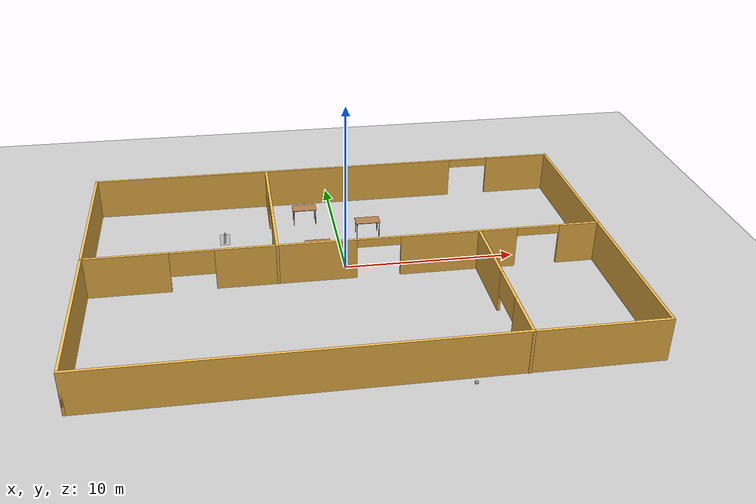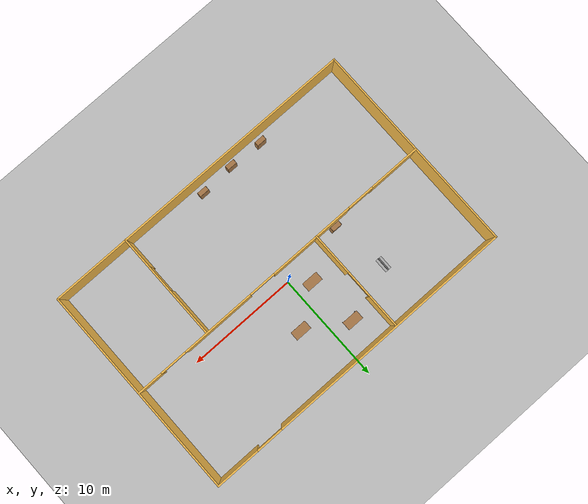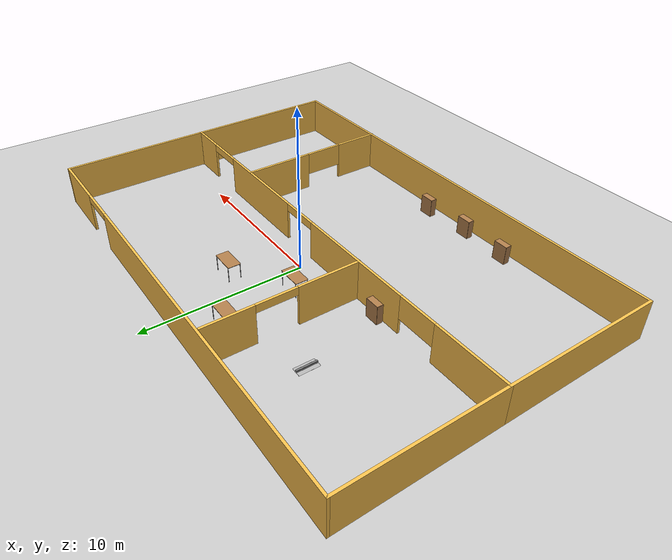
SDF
<sdf version="1.6">
 <world name="default">
  <model name="ground_plane">
   <static>1</static>
   <link name="link">
    <collision name="collision">
     <geometry><plane><normal>0 0 1</normal><size>100 100</size></plane></geometry>
     <surface>
      <contact><collide_bitmask>65535</collide_bitmask></contact>
      <friction><ode><mu>100</mu><mu2>50</mu2></ode></friction>
     </surface>
    </collision>
    <visual name="visual">
     <cast_shadows>0</cast_shadows>
     <geometry><plane><normal>0 0 1</normal><size>100 100</size></plane></geometry>
     <material>
      <script><uri>file://media/materials/scripts/gazebo.material</uri><name>Gazebo/Grey</name></script>
     </material>
    </visual>
   </link>
  </model>
  <model name="mybuild">
   <pose>-0.0244 -1.32563 0 0 -0 0</pose>
   <link name="Wall_0">
    <collision name="Wall_0_Collision">
     <geometry><box><size>10 0.15 2.5</size></box></geometry>
     <pose>0 0 1.25 0 -0 0</pose>
    </collision>
    <visual name="Wall_0_Visual">
     <pose>0 0 1.25 0 -0 0</pose>
     <geometry><box><size>10 0.15 2.5</size></box></geometry>
     <material>
      <script><uri>file://media/materials/scripts/gazebo.material</uri><name>Gazebo/Grey</name></script>
      <ambient>1 0.764706 0.305882 1</ambient>
     </material>
     <meta><layer>0</layer></meta>
    </visual>
    <pose>-14.675 -4.73543 0 0 0 -1.5708</pose>
   </link>
   <link name="Wall_1">
    <collision name="Wall_1_Collision">
     <geometry><box><size>29.5 0.15 2.5</size></box></geometry>
     <pose>0 0 1.25 0 -0 0</pose>
    </collision>
    <visual name="Wall_1_Visual">
     <pose>0 0 1.25 0 -0 0</pose>
     <geometry><box><size>29.5 0.15 2.5</size></box></geometry>
     <material>
      <script><uri>file://media/materials/scripts/gazebo.material</uri><name>Gazebo/Grey</name></script>
      <ambient>1 0.764706 0.305882 1</ambient>
     </material>
     <meta><layer>0</layer></meta>
    </visual>
    <pose>0 -9.66043 0 0 -0 0</pose>
   </link>
   <link name="Wall_2">
    <collision name="Wall_2_Collision">
     <geometry><box><size>19.5 0.15 2.5</size></box></geometry>
     <pose>0 0 1.25 0 -0 0</pose>
    </collision>
    <visual name="Wall_2_Visual">
     <pose>0 0 1.25 0 -0 0</pose>
     <geometry><box><size>19.5 0.15 2.5</size></box></geometry>
     <material>
      <script><uri>file://media/materials/scripts/gazebo.material</uri><name>Gazebo/Grey</name></script>
      <ambient>1 0.764706 0.305882 1</ambient>
     </material>
     <meta><layer>0</layer></meta>
    </visual>
    <pose>14.675 0.014573 0 0 -0 1.5708</pose>
   </link>
   <link name="Wall_3">
    <pose>0 9.68957 0 0 -0 3.14159</pose>
    <visual name="Wall_3_Visual_0">
     <pose>-12.6853 0 1.25 0 -0 0</pose>
     <geometry><box><size>4.12944 0.15 2.5</size></box></geometry>
     <material>
      <script><uri>file://media/materials/scripts/gazebo.material</uri><name>Gazebo/Grey</name></script>
      <ambient>1 0.764706 0.305882 1</ambient>
     </material>
     <meta><layer>0</layer></meta>
    </visual>
    <collision name="Wall_3_Collision_0">
     <geometry><box><size>4.12944 0.15 2.5</size></box></geometry>
     <pose>-12.6853 0 1.25 0 -0 0</pose>
    </collision>
    <visual name="Wall_3_Visual_1">
     <pose>3.31472 0 1.25 0 -0 0</pose>
     <geometry><box><size>22.8706 0.15 2.5</size></box></geometry>
     <material>
      <script><uri>file://media/materials/scripts/gazebo.material</uri><name>Gazebo/Grey</name></script>
      <ambient>1 0.764706 0.305882 1</ambient>
     </material>
     <meta><layer>0</layer></meta>
    </visual>
    <collision name="Wall_3_Collision_1">
     <geometry><box><size>22.8706 0.15 2.5</size></box></geometry>
     <pose>3.31472 0 1.25 0 -0 0</pose>
    </collision>
    <visual name="Wall_3_Visual_2">
     <pose>-9.37056 0 2.25 0 -0 0</pose>
     <geometry><box><size>2.5 0.15 0.5</size></box></geometry>
     <material>
      <script><uri>file://media/materials/scripts/gazebo.material</uri><name>Gazebo/Grey</name></script>
      <ambient>1 0.764706 0.305882 1</ambient>
     </material>
     <meta><layer>0</layer></meta>
    </visual>
    <collision name="Wall_3_Collision_2">
     <geometry><box><size>2.5 0.15 0.5</size></box></geometry>
     <pose>-9.37056 0 2.25 0 -0 0</pose>
    </collision>
   </link>
   <link name="Wall_4">
    <collision name="Wall_4_Collision">
     <geometry><box><size>9.65 0.15 2.5</size></box></geometry>
     <pose>0 0 1.25 0 -0 0</pose>
    </collision>
    <visual name="Wall_4_Visual">
     <pose>0 0 1.25 0 -0 0</pose>
     <geometry><box><size>9.65 0.15 2.5</size></box></geometry>
     <material>
      <script><uri>file://media/materials/scripts/gazebo.material</uri><name>Gazebo/Grey</name></script>
      <ambient>1 0.764706 0.305882 1</ambient>
     </material>
     <meta><layer>0</layer></meta>
    </visual>
    <pose>-14.675 4.93957 0 0 0 -1.5708</pose>
   </link>
   <link name="Wall_5">
    <pose>0 0.189573 0 0 -0 0</pose>
    <visual name="Wall_5_Visual_0">
     <pose>-12.3566 0 1.25 0 -0 0</pose>
     <geometry><box><size>4.78671 0.15 2.5</size></box></geometry>
     <material>
      <script><uri>file://media/materials/scripts/gazebo.material</uri><name>Gazebo/Grey</name></script>
      <ambient>1 0.764706 0.305882 1</ambient>
     </material>
     <meta><layer>0</layer></meta>
    </visual>
    <collision name="Wall_5_Collision_0">
     <geometry><box><size>4.78671 0.15 2.5</size></box></geometry>
     <pose>-12.3566 0 1.25 0 -0 0</pose>
    </collision>
    <visual name="Wall_5_Visual_1">
     <pose>-3.47004 0 1.25 0 -0 0</pose>
     <geometry><box><size>7.98649 0.15 2.5</size></box></geometry>
     <material>
      <script><uri>file://media/materials/scripts/gazebo.material</uri><name>Gazebo/Grey</name></script>
      <ambient>1 0.764706 0.305882 1</ambient>
     </material>
     <meta><layer>0</layer></meta>
    </visual>
    <collision name="Wall_5_Collision_1">
     <geometry><box><size>7.98649 0.15 2.5</size></box></geometry>
     <pose>-3.47004 0 1.25 0 -0 0</pose>
    </collision>
    <visual name="Wall_5_Visual_2">
     <pose>6.42792 0 1.25 0 -0 0</pose>
     <geometry><box><size>6.80943 0.15 2.5</size></box></geometry>
     <material>
      <script><uri>file://media/materials/scripts/gazebo.material</uri><name>Gazebo/Grey</name></script>
      <ambient>1 0.764706 0.305882 1</ambient>
     </material>
     <meta><layer>0</layer></meta>
    </visual>
    <collision name="Wall_5_Collision_2">
     <geometry><box><size>6.80943 0.15 2.5</size></box></geometry>
     <pose>6.42792 0 1.25 0 -0 0</pose>
    </collision>
    <visual name="Wall_5_Visual_3">
     <pose>13.5413 0 1.25 0 -0 0</pose>
     <geometry><box><size>2.41736 0.15 2.5</size></box></geometry>
     <material>
      <script><uri>file://media/materials/scripts/gazebo.material</uri><name>Gazebo/Grey</name></script>
      <ambient>1 0.764706 0.305882 1</ambient>
     </material>
     <meta><layer>0</layer></meta>
    </visual>
    <collision name="Wall_5_Collision_3">
     <geometry><box><size>2.41736 0.15 2.5</size></box></geometry>
     <pose>13.5413 0 1.25 0 -0 0</pose>
    </collision>
    <visual name="Wall_5_Visual_4">
     <pose>-8.71329 0 1.75 0 -0 0</pose>
     <geometry><box><size>2.5 0.15 1.5</size></box></geometry>
     <material>
      <script><uri>file://media/materials/scripts/gazebo.material</uri><name>Gazebo/Grey</name></script>
      <ambient>1 0.764706 0.305882 1</ambient>
     </material>
     <meta><layer>0</layer></meta>
    </visual>
    <collision name="Wall_5_Collision_4">
     <geometry><box><size>2.5 0.15 1.5</size></box></geometry>
     <pose>-8.71329 0 1.75 0 -0 0</pose>
    </collision>
    <visual name="Wall_5_Visual_5">
     <pose>1.7732 0 2.25 0 -0 0</pose>
     <geometry><box><size>2.5 0.15 0.5</size></box></geometry>
     <material>
      <script><uri>file://media/materials/scripts/gazebo.material</uri><name>Gazebo/Grey</name></script>
      <ambient>1 0.764706 0.305882 1</ambient>
     </material>
     <meta><layer>0</layer></meta>
    </visual>
    <collision name="Wall_5_Collision_5">
     <geometry><box><size>2.5 0.15 0.5</size></box></geometry>
     <pose>1.7732 0 2.25 0 -0 0</pose>
    </collision>
    <visual name="Wall_5_Visual_6">
     <pose>11.0826 0 2.25 0 -0 0</pose>
     <geometry><box><size>2.5 0.15 0.5</size></box></geometry>
     <material>
      <script><uri>file://media/materials/scripts/gazebo.material</uri><name>Gazebo/Grey</name></script>
      <ambient>1 0.764706 0.305882 1</ambient>
     </material>
     <meta><layer>0</layer></meta>
    </visual>
    <collision name="Wall_5_Collision_6">
     <geometry><box><size>2.5 0.15 0.5</size></box></geometry>
     <pose>11.0826 0 2.25 0 -0 0</pose>
    </collision>
   </link>
   <link name="Wall_7">
    <pose>-3.98494 4.8467 0 0 -0 1.5708</pose>
    <visual name="Wall_7_Visual_0">
     <pose>-2.78299 0 1.25 0 -0 0</pose>
     <geometry><box><size>3.93402 0.15 2.5</size></box></geometry>
     <material>
      <script><uri>file://media/materials/scripts/gazebo.material</uri><name>Gazebo/Grey</name></script>
      <ambient>1 0.764706 0.305882 1</ambient>
     </material>
     <meta><layer>0</layer></meta>
    </visual>
    <collision name="Wall_7_Collision_0">
     <geometry><box><size>3.93402 0.15 2.5</size></box></geometry>
     <pose>-2.78299 0 1.25 0 -0 0</pose>
    </collision>
    <visual name="Wall_7_Visual_1">
     <pose>3.21701 0 1.25 0 -0 0</pose>
     <geometry><box><size>3.06598 0.15 2.5</size></box></geometry>
     <material>
      <script><uri>file://media/materials/scripts/gazebo.material</uri><name>Gazebo/Grey</name></script>
      <ambient>1 0.764706 0.305882 1</ambient>
     </material>
     <meta><layer>0</layer></meta>
    </visual>
    <collision name="Wall_7_Collision_1">
     <geometry><box><size>3.06598 0.15 2.5</size></box></geometry>
     <pose>3.21701 0 1.25 0 -0 0</pose>
    </collision>
    <visual name="Wall_7_Visual_2">
     <pose>0.434022 0 2.25 0 -0 0</pose>
     <geometry><box><size>2.5 0.15 0.5</size></box></geometry>
     <material>
      <script><uri>file://media/materials/scripts/gazebo.material</uri><name>Gazebo/Grey</name></script>
      <ambient>1 0.764706 0.305882 1</ambient>
     </material>
     <meta><layer>0</layer></meta>
    </visual>
    <collision name="Wall_7_Collision_2">
     <geometry><box><size>2.5 0.15 0.5</size></box></geometry>
     <pose>0.434022 0 2.25 0 -0 0</pose>
    </collision>
   </link>
   <link name="Wall_9">
    <pose>7.60023 -4.76457 0 0 0 -1.5708</pose>
    <visual name="Wall_9_Visual_0">
     <pose>-2.74389 0 1.25 0 -0 0</pose>
     <geometry><box><size>4.51221 0.15 2.5</size></box></geometry>
     <material>
      <script><uri>file://media/materials/scripts/gazebo.material</uri><name>Gazebo/Grey</name></script>
      <ambient>1 0.764706 0.305882 1</ambient>
     </material>
     <meta><layer>0</layer></meta>
    </visual>
    <collision name="Wall_9_Collision_0">
     <geometry><box><size>4.51221 0.15 2.5</size></box></geometry>
     <pose>-2.74389 0 1.25 0 -0 0</pose>
    </collision>
    <visual name="Wall_9_Visual_1">
     <pose>3.50611 0 1.25 0 -0 0</pose>
     <geometry><box><size>2.98779 0.15 2.5</size></box></geometry>
     <material>
      <script><uri>file://media/materials/scripts/gazebo.material</uri><name>Gazebo/Grey</name></script>
      <ambient>1 0.764706 0.305882 1</ambient>
     </material>
     <meta><layer>0</layer></meta>
    </visual>
    <collision name="Wall_9_Collision_1">
     <geometry><box><size>2.98779 0.15 2.5</size></box></geometry>
     <pose>3.50611 0 1.25 0 -0 0</pose>
    </collision>
    <visual name="Wall_9_Visual_2">
     <pose>0.762212 0 1.75 0 -0 0</pose>
     <geometry><box><size>2.5 0.15 1.5</size></box></geometry>
     <material>
      <script><uri>file://media/materials/scripts/gazebo.material</uri><name>Gazebo/Grey</name></script>
      <ambient>1 0.764706 0.305882 1</ambient>
     </material>
     <meta><layer>0</layer></meta>
    </visual>
    <collision name="Wall_9_Collision_2">
     <geometry><box><size>2.5 0.15 1.5</size></box></geometry>
     <pose>0.762212 0 1.75 0 -0 0</pose>
    </collision>
   </link>
   <static>1</static>
  </model>
  <model name="bookshelf">
   <static>1</static>
   <link name="link">
    <inertial><mass>1</mass></inertial>
    <collision name="back">
     <pose>0 0.005 0.6 0 -0 0</pose>
     <geometry><box><size>0.9 0.01 1.2</size></box></geometry>
    </collision>
    <visual name="visual1">
     <pose>0 0.005 0.6 0 -0 0</pose>
     <geometry><box><size>0.9 0.01 1.2</size></box></geometry>
     <material>
      <script><uri>file://media/materials/scripts/gazebo.material</uri><name>Gazebo/Wood</name></script>
     </material>
    </visual>
    <collision name="left_side">
     <pose>0.45 -0.195 0.6 0 -0 0</pose>
     <geometry><box><size>0.02 0.4 1.2</size></box></geometry>
    </collision>
    <visual name="visual2">
     <pose>0.45 -0.195 0.6 0 -0 0</pose>
     <geometry><box><size>0.02 0.4 1.2</size></box></geometry>
     <material>
      <script><uri>file://media/materials/scripts/gazebo.material</uri><name>Gazebo/Wood</name></script>
     </material>
    </visual>
    <collision name="right_side">
     <pose>-0.45 -0.195 0.6 0 -0 0</pose>
     <geometry><box><size>0.02 0.4 1.2</size></box></geometry>
    </collision>
    <visual name="visual3">
     <pose>-0.45 -0.195 0.6 0 -0 0</pose>
     <geometry><box><size>0.02 0.4 1.2</size></box></geometry>
     <material>
      <script><uri>file://media/materials/scripts/gazebo.material</uri><name>Gazebo/Wood</name></script>
     </material>
    </visual>
    <collision name="bottom">
     <pose>0 -0.195 0.03 0 -0 0</pose>
     <geometry><box><size>0.88 0.4 0.06</size></box></geometry>
    </collision>
    <visual name="visual4">
     <pose>0 -0.195 0.03 0 -0 0</pose>
     <geometry><box><size>0.88 0.4 0.06</size></box></geometry>
     <material>
      <script><uri>file://media/materials/scripts/gazebo.material</uri><name>Gazebo/Wood</name></script>
     </material>
    </visual>
    <collision name="top">
     <pose>0 -0.195 1.19 0 -0 0</pose>
     <geometry><box><size>0.88 0.4 0.02</size></box></geometry>
    </collision>
    <visual name="visual5">
     <pose>0 -0.195 1.19 0 -0 0</pose>
     <geometry><box><size>0.88 0.4 0.02</size></box></geometry>
     <material>
      <script><uri>file://media/materials/scripts/gazebo.material</uri><name>Gazebo/Wood</name></script>
     </material>
    </visual>
    <collision name="low_shelf">
     <pose>0 -0.195 0.43 0 -0 0</pose>
     <geometry><box><size>0.88 0.4 0.02</size></box></geometry>
    </collision>
    <visual name="visual6">
     <pose>0 -0.195 0.43 0 -0 0</pose>
     <geometry><box><size>0.88 0.4 0.02</size></box></geometry>
     <material>
      <script><uri>file://media/materials/scripts/gazebo.material</uri><name>Gazebo/Wood</name></script>
     </material>
    </visual>
    <collision name="high_shelf">
     <pose>0 -0.195 0.8 0 -0 0</pose>
     <geometry><box><size>0.88 0.4 0.02</size></box></geometry>
    </collision>
    <visual name="visual7">
     <pose>0 -0.195 0.8 0 -0 0</pose>
     <geometry><box><size>0.88 0.4 0.02</size></box></geometry>
     <material>
      <script><uri>file://media/materials/scripts/gazebo.material</uri><name>Gazebo/Wood</name></script>
     </material>
    </visual>
   </link>
   <pose>-5.92251 -0.596105 0 0 -0 0</pose>
  </model>
  <model name="table_2">
   <static>1</static>
   <link name="link">
    <collision name="surface">
     <pose>0 0 1 0 -0 0</pose>
     <geometry><box><size>1.5 0.8 0.03</size></box></geometry>
     <surface><friction><ode><mu>0.6</mu><mu2>0.6</mu2></ode></friction></surface>
    </collision>
    <visual name="visual1">
     <pose>0 0 1 0 -0 0</pose>
     <geometry><box><size>1.5 0.8 0.03</size></box></geometry>
     <material>
      <script><uri>file://media/materials/scripts/gazebo.material</uri><name>Gazebo/Wood</name></script>
     </material>
    </visual>
    <collision name="front_left_leg">
     <pose>0.68 0.38 0.5 0 -0 0</pose>
     <geometry><cylinder><radius>0.02</radius><length>1</length></cylinder></geometry>
    </collision>
    <visual name="front_left_leg">
     <pose>0.68 0.38 0.5 0 -0 0</pose>
     <geometry><cylinder><radius>0.02</radius><length>1</length></cylinder></geometry>
     <material>
      <script><uri>file://media/materials/scripts/gazebo.material</uri><name>Gazebo/Grey</name></script>
     </material>
    </visual>
    <collision name="front_right_leg">
     <pose>0.68 -0.38 0.5 0 -0 0</pose>
     <geometry><cylinder><radius>0.02</radius><length>1</length></cylinder></geometry>
    </collision>
    <visual name="front_right_leg">
     <pose>0.68 -0.38 0.5 0 -0 0</pose>
     <geometry><cylinder><radius>0.02</radius><length>1</length></cylinder></geometry>
     <material>
      <script><uri>file://media/materials/scripts/gazebo.material</uri><name>Gazebo/Grey</name></script>
     </material>
    </visual>
    <collision name="back_right_leg">
     <pose>-0.68 -0.38 0.5 0 -0 0</pose>
     <geometry><cylinder><radius>0.02</radius><length>1</length></cylinder></geometry>
    </collision>
    <visual name="back_right_leg">
     <pose>-0.68 -0.38 0.5 0 -0 0</pose>
     <geometry><cylinder><radius>0.02</radius><length>1</length></cylinder></geometry>
     <material>
      <script><uri>file://media/materials/scripts/gazebo.material</uri><name>Gazebo/Grey</name></script>
     </material>
    </visual>
    <collision name="back_left_leg">
     <pose>-0.68 0.38 0.5 0 -0 0</pose>
     <geometry><cylinder><radius>0.02</radius><length>1</length></cylinder></geometry>
    </collision>
    <visual name="back_left_leg">
     <pose>-0.68 0.38 0.5 0 -0 0</pose>
     <geometry><cylinder><radius>0.02</radius><length>1</length></cylinder></geometry>
     <material>
      <script><uri>file://media/materials/scripts/gazebo.material</uri><name>Gazebo/Grey</name></script>
     </material>
    </visual>
   </link>
   <pose>-1.47467 1.31804 0 0 -0 0</pose>
  </model>
  <model name="table_3">
   <static>1</static>
   <link name="link">
    <collision name="surface">
     <pose>0 0 1 0 -0 0</pose>
     <geometry><box><size>1.5 0.8 0.03</size></box></geometry>
     <surface><friction><ode><mu>0.6</mu><mu2>0.6</mu2></ode></friction></surface>
    </collision>
    <visual name="visual1">
     <pose>0 0 1 0 -0 0</pose>
     <geometry><box><size>1.5 0.8 0.03</size></box></geometry>
     <material>
      <script><uri>file://media/materials/scripts/gazebo.material</uri><name>Gazebo/Wood</name></script>
     </material>
    </visual>
    <collision name="front_left_leg">
     <pose>0.68 0.38 0.5 0 -0 0</pose>
     <geometry><cylinder><radius>0.02</radius><length>1</length></cylinder></geometry>
    </collision>
    <visual name="front_left_leg">
     <pose>0.68 0.38 0.5 0 -0 0</pose>
     <geometry><cylinder><radius>0.02</radius><length>1</length></cylinder></geometry>
     <material>
      <script><uri>file://media/materials/scripts/gazebo.material</uri><name>Gazebo/Grey</name></script>
     </material>
    </visual>
    <collision name="front_right_leg">
     <pose>0.68 -0.38 0.5 0 -0 0</pose>
     <geometry><cylinder><radius>0.02</radius><length>1</length></cylinder></geometry>
    </collision>
    <visual name="front_right_leg">
     <pose>0.68 -0.38 0.5 0 -0 0</pose>
     <geometry><cylinder><radius>0.02</radius><length>1</length></cylinder></geometry>
     <material>
      <script><uri>file://media/materials/scripts/gazebo.material</uri><name>Gazebo/Grey</name></script>
     </material>
    </visual>
    <collision name="back_right_leg">
     <pose>-0.68 -0.38 0.5 0 -0 0</pose>
     <geometry><cylinder><radius>0.02</radius><length>1</length></cylinder></geometry>
    </collision>
    <visual name="back_right_leg">
     <pose>-0.68 -0.38 0.5 0 -0 0</pose>
     <geometry><cylinder><radius>0.02</radius><length>1</length></cylinder></geometry>
     <material>
      <script><uri>file://media/materials/scripts/gazebo.material</uri><name>Gazebo/Grey</name></script>
     </material>
    </visual>
    <collision name="back_left_leg">
     <pose>-0.68 0.38 0.5 0 -0 0</pose>
     <geometry><cylinder><radius>0.02</radius><length>1</length></cylinder></geometry>
    </collision>
    <visual name="back_left_leg">
     <pose>-0.68 0.38 0.5 0 -0 0</pose>
     <geometry><cylinder><radius>0.02</radius><length>1</length></cylinder></geometry>
     <material>
      <script><uri>file://media/materials/scripts/gazebo.material</uri><name>Gazebo/Grey</name></script>
     </material>
    </visual>
   </link>
   <pose>-1.84142 5.83645 0 0 -0 0</pose>
  </model>
  <model name="table_4">
   <static>1</static>
   <link name="link">
    <collision name="surface">
     <pose>0 0 1 0 -0 0</pose>
     <geometry><box><size>1.5 0.8 0.03</size></box></geometry>
     <surface><friction><ode><mu>0.6</mu><mu2>0.6</mu2></ode></friction></surface>
    </collision>
    <visual name="visual1">
     <pose>0 0 1 0 -0 0</pose>
     <geometry><box><size>1.5 0.8 0.03</size></box></geometry>
     <material>
      <script><uri>file://media/materials/scripts/gazebo.material</uri><name>Gazebo/Wood</name></script>
     </material>
    </visual>
    <collision name="front_left_leg">
     <pose>0.68 0.38 0.5 0 -0 0</pose>
     <geometry><cylinder><radius>0.02</radius><length>1</length></cylinder></geometry>
    </collision>
    <visual name="front_left_leg">
     <pose>0.68 0.38 0.5 0 -0 0</pose>
     <geometry><cylinder><radius>0.02</radius><length>1</length></cylinder></geometry>
     <material>
      <script><uri>file://media/materials/scripts/gazebo.material</uri><name>Gazebo/Grey</name></script>
     </material>
    </visual>
    <collision name="front_right_leg">
     <pose>0.68 -0.38 0.5 0 -0 0</pose>
     <geometry><cylinder><radius>0.02</radius><length>1</length></cylinder></geometry>
    </collision>
    <visual name="front_right_leg">
     <pose>0.68 -0.38 0.5 0 -0 0</pose>
     <geometry><cylinder><radius>0.02</radius><length>1</length></cylinder></geometry>
     <material>
      <script><uri>file://media/materials/scripts/gazebo.material</uri><name>Gazebo/Grey</name></script>
     </material>
    </visual>
    <collision name="back_right_leg">
     <pose>-0.68 -0.38 0.5 0 -0 0</pose>
     <geometry><cylinder><radius>0.02</radius><length>1</length></cylinder></geometry>
    </collision>
    <visual name="back_right_leg">
     <pose>-0.68 -0.38 0.5 0 -0 0</pose>
     <geometry><cylinder><radius>0.02</radius><length>1</length></cylinder></geometry>
     <material>
      <script><uri>file://media/materials/scripts/gazebo.material</uri><name>Gazebo/Grey</name></script>
     </material>
    </visual>
    <collision name="back_left_leg">
     <pose>-0.68 0.38 0.5 0 -0 0</pose>
     <geometry><cylinder><radius>0.02</radius><length>1</length></cylinder></geometry>
    </collision>
    <visual name="back_left_leg">
     <pose>-0.68 0.38 0.5 0 -0 0</pose>
     <geometry><cylinder><radius>0.02</radius><length>1</length></cylinder></geometry>
     <material>
      <script><uri>file://media/materials/scripts/gazebo.material</uri><name>Gazebo/Grey</name></script>
     </material>
    </visual>
   </link>
   <pose>1.8554 3.66572 0 0 -0 0</pose>
  </model>
  <model name="bookshelf_0">
   <static>1</static>
   <link name="link">
    <inertial><mass>1</mass></inertial>
    <collision name="back">
     <pose>0 0.005 0.6 0 -0 0</pose>
     <geometry><box><size>0.9 0.01 1.2</size></box></geometry>
    </collision>
    <visual name="visual1">
     <pose>0 0.005 0.6 0 -0 0</pose>
     <geometry><box><size>0.9 0.01 1.2</size></box></geometry>
     <material>
      <script><uri>file://media/materials/scripts/gazebo.material</uri><name>Gazebo/Wood</name></script>
     </material>
    </visual>
    <collision name="left_side">
     <pose>0.45 -0.195 0.6 0 -0 0</pose>
     <geometry><box><size>0.02 0.4 1.2</size></box></geometry>
    </collision>
    <visual name="visual2">
     <pose>0.45 -0.195 0.6 0 -0 0</pose>
     <geometry><box><size>0.02 0.4 1.2</size></box></geometry>
     <material>
      <script><uri>file://media/materials/scripts/gazebo.material</uri><name>Gazebo/Wood</name></script>
     </material>
    </visual>
    <collision name="right_side">
     <pose>-0.45 -0.195 0.6 0 -0 0</pose>
     <geometry><box><size>0.02 0.4 1.2</size></box></geometry>
    </collision>
    <visual name="visual3">
     <pose>-0.45 -0.195 0.6 0 -0 0</pose>
     <geometry><box><size>0.02 0.4 1.2</size></box></geometry>
     <material>
      <script><uri>file://media/materials/scripts/gazebo.material</uri><name>Gazebo/Wood</name></script>
     </material>
    </visual>
    <collision name="bottom">
     <pose>0 -0.195 0.03 0 -0 0</pose>
     <geometry><box><size>0.88 0.4 0.06</size></box></geometry>
    </collision>
    <visual name="visual4">
     <pose>0 -0.195 0.03 0 -0 0</pose>
     <geometry><box><size>0.88 0.4 0.06</size></box></geometry>
     <material>
      <script><uri>file://media/materials/scripts/gazebo.material</uri><name>Gazebo/Wood</name></script>
     </material>
    </visual>
    <collision name="top">
     <pose>0 -0.195 1.19 0 -0 0</pose>
     <geometry><box><size>0.88 0.4 0.02</size></box></geometry>
    </collision>
    <visual name="visual5">
     <pose>0 -0.195 1.19 0 -0 0</pose>
     <geometry><box><size>0.88 0.4 0.02</size></box></geometry>
     <material>
      <script><uri>file://media/materials/scripts/gazebo.material</uri><name>Gazebo/Wood</name></script>
     </material>
    </visual>
    <collision name="low_shelf">
     <pose>0 -0.195 0.43 0 -0 0</pose>
     <geometry><box><size>0.88 0.4 0.02</size></box></geometry>
    </collision>
    <visual name="visual6">
     <pose>0 -0.195 0.43 0 -0 0</pose>
     <geometry><box><size>0.88 0.4 0.02</size></box></geometry>
     <material>
      <script><uri>file://media/materials/scripts/gazebo.material</uri><name>Gazebo/Wood</name></script>
     </material>
    </visual>
    <collision name="high_shelf">
     <pose>0 -0.195 0.8 0 -0 0</pose>
     <geometry><box><size>0.88 0.4 0.02</size></box></geometry>
    </collision>
    <visual name="visual7">
     <pose>0 -0.195 0.8 0 -0 0</pose>
     <geometry><box><size>0.88 0.4 0.02</size></box></geometry>
     <material>
      <script><uri>file://media/materials/scripts/gazebo.material</uri><name>Gazebo/Wood</name></script>
     </material>
    </visual>
   </link>
   <pose>-5.98214 -10.0022 0 0 -0 0</pose>
  </model>
  <model name="bookshelf_1">
   <static>1</static>
   <link name="link">
    <inertial><mass>1</mass></inertial>
    <collision name="back">
     <pose>0 0.005 0.6 0 -0 0</pose>
     <geometry><box><size>0.9 0.01 1.2</size></box></geometry>
    </collision>
    <visual name="visual1">
     <pose>0 0.005 0.6 0 -0 0</pose>
     <geometry><box><size>0.9 0.01 1.2</size></box></geometry>
     <material>
      <script><uri>file://media/materials/scripts/gazebo.material</uri><name>Gazebo/Wood</name></script>
     </material>
    </visual>
    <collision name="left_side">
     <pose>0.45 -0.195 0.6 0 -0 0</pose>
     <geometry><box><size>0.02 0.4 1.2</size></box></geometry>
    </collision>
    <visual name="visual2">
     <pose>0.45 -0.195 0.6 0 -0 0</pose>
     <geometry><box><size>0.02 0.4 1.2</size></box></geometry>
     <material>
      <script><uri>file://media/materials/scripts/gazebo.material</uri><name>Gazebo/Wood</name></script>
     </material>
    </visual>
    <collision name="right_side">
     <pose>-0.45 -0.195 0.6 0 -0 0</pose>
     <geometry><box><size>0.02 0.4 1.2</size></box></geometry>
    </collision>
    <visual name="visual3">
     <pose>-0.45 -0.195 0.6 0 -0 0</pose>
     <geometry><box><size>0.02 0.4 1.2</size></box></geometry>
     <material>
      <script><uri>file://media/materials/scripts/gazebo.material</uri><name>Gazebo/Wood</name></script>
     </material>
    </visual>
    <collision name="bottom">
     <pose>0 -0.195 0.03 0 -0 0</pose>
     <geometry><box><size>0.88 0.4 0.06</size></box></geometry>
    </collision>
    <visual name="visual4">
     <pose>0 -0.195 0.03 0 -0 0</pose>
     <geometry><box><size>0.88 0.4 0.06</size></box></geometry>
     <material>
      <script><uri>file://media/materials/scripts/gazebo.material</uri><name>Gazebo/Wood</name></script>
     </material>
    </visual>
    <collision name="top">
     <pose>0 -0.195 1.19 0 -0 0</pose>
     <geometry><box><size>0.88 0.4 0.02</size></box></geometry>
    </collision>
    <visual name="visual5">
     <pose>0 -0.195 1.19 0 -0 0</pose>
     <geometry><box><size>0.88 0.4 0.02</size></box></geometry>
     <material>
      <script><uri>file://media/materials/scripts/gazebo.material</uri><name>Gazebo/Wood</name></script>
     </material>
    </visual>
    <collision name="low_shelf">
     <pose>0 -0.195 0.43 0 -0 0</pose>
     <geometry><box><size>0.88 0.4 0.02</size></box></geometry>
    </collision>
    <visual name="visual6">
     <pose>0 -0.195 0.43 0 -0 0</pose>
     <geometry><box><size>0.88 0.4 0.02</size></box></geometry>
     <material>
      <script><uri>file://media/materials/scripts/gazebo.material</uri><name>Gazebo/Wood</name></script>
     </material>
    </visual>
    <collision name="high_shelf">
     <pose>0 -0.195 0.8 0 -0 0</pose>
     <geometry><box><size>0.88 0.4 0.02</size></box></geometry>
    </collision>
    <visual name="visual7">
     <pose>0 -0.195 0.8 0 -0 0</pose>
     <geometry><box><size>0.88 0.4 0.02</size></box></geometry>
     <material>
      <script><uri>file://media/materials/scripts/gazebo.material</uri><name>Gazebo/Wood</name></script>
     </material>
    </visual>
   </link>
   <pose>-2.84452 -10.1152 0 0 -0 0</pose>
  </model>
  <model name="bookshelf_2">
   <static>1</static>
   <link name="link">
    <inertial><mass>1</mass></inertial>
    <collision name="back">
     <pose>0 0.005 0.6 0 -0 0</pose>
     <geometry><box><size>0.9 0.01 1.2</size></box></geometry>
    </collision>
    <visual name="visual1">
     <pose>0 0.005 0.6 0 -0 0</pose>
     <geometry><box><size>0.9 0.01 1.2</size></box></geometry>
     <material>
      <script><uri>file://media/materials/scripts/gazebo.material</uri><name>Gazebo/Wood</name></script>
     </material>
    </visual>
    <collision name="left_side">
     <pose>0.45 -0.195 0.6 0 -0 0</pose>
     <geometry><box><size>0.02 0.4 1.2</size></box></geometry>
    </collision>
    <visual name="visual2">
     <pose>0.45 -0.195 0.6 0 -0 0</pose>
     <geometry><box><size>0.02 0.4 1.2</size></box></geometry>
     <material>
      <script><uri>file://media/materials/scripts/gazebo.material</uri><name>Gazebo/Wood</name></script>
     </material>
    </visual>
    <collision name="right_side">
     <pose>-0.45 -0.195 0.6 0 -0 0</pose>
     <geometry><box><size>0.02 0.4 1.2</size></box></geometry>
    </collision>
    <visual name="visual3">
     <pose>-0.45 -0.195 0.6 0 -0 0</pose>
     <geometry><box><size>0.02 0.4 1.2</size></box></geometry>
     <material>
      <script><uri>file://media/materials/scripts/gazebo.material</uri><name>Gazebo/Wood</name></script>
     </material>
    </visual>
    <collision name="bottom">
     <pose>0 -0.195 0.03 0 -0 0</pose>
     <geometry><box><size>0.88 0.4 0.06</size></box></geometry>
    </collision>
    <visual name="visual4">
     <pose>0 -0.195 0.03 0 -0 0</pose>
     <geometry><box><size>0.88 0.4 0.06</size></box></geometry>
     <material>
      <script><uri>file://media/materials/scripts/gazebo.material</uri><name>Gazebo/Wood</name></script>
     </material>
    </visual>
    <collision name="top">
     <pose>0 -0.195 1.19 0 -0 0</pose>
     <geometry><box><size>0.88 0.4 0.02</size></box></geometry>
    </collision>
    <visual name="visual5">
     <pose>0 -0.195 1.19 0 -0 0</pose>
     <geometry><box><size>0.88 0.4 0.02</size></box></geometry>
     <material>
      <script><uri>file://media/materials/scripts/gazebo.material</uri><name>Gazebo/Wood</name></script>
     </material>
    </visual>
    <collision name="low_shelf">
     <pose>0 -0.195 0.43 0 -0 0</pose>
     <geometry><box><size>0.88 0.4 0.02</size></box></geometry>
    </collision>
    <visual name="visual6">
     <pose>0 -0.195 0.43 0 -0 0</pose>
     <geometry><box><size>0.88 0.4 0.02</size></box></geometry>
     <material>
      <script><uri>file://media/materials/scripts/gazebo.material</uri><name>Gazebo/Wood</name></script>
     </material>
    </visual>
    <collision name="high_shelf">
     <pose>0 -0.195 0.8 0 -0 0</pose>
     <geometry><box><size>0.88 0.4 0.02</size></box></geometry>
    </collision>
    <visual name="visual7">
     <pose>0 -0.195 0.8 0 -0 0</pose>
     <geometry><box><size>0.88 0.4 0.02</size></box></geometry>
     <material>
      <script><uri>file://media/materials/scripts/gazebo.material</uri><name>Gazebo/Wood</name></script>
     </material>
    </visual>
   </link>
   <pose>0.326433 -9.94105 0 0 -0 0</pose>
  </model>
  <model name="frc2016_rockwall">
   <static>1</static>
   <link name="link">
    <inertial>
     <mass>10</mass>
     <pose>0 0 0.08974 0 -0 0</pose>
     <inertia><ixx>0.327091</ixx><ixy>0</ixy><ixz>0</ixz><iyy>1.37417</iyy><iyz>0</iyz><izz>1.64109</izz></inertia>
    </inertial>
    <visual name="platform">
     <pose>0 0 0.06432 0 -0 0</pose>
     <geometry><box><size>1.27 0.5969 0.003175</size></box></geometry>
    </visual>
    <collision name="platform">
     <pose>0 0 0.06432 0 -0 0</pose>
     <geometry><box><size>1.27 0.5969 0.003175</size></box></geometry>
    </collision>
    <visual name="up1">
     <pose>0 0.05166 0.12537 0 -0 0</pose>
     <geometry><box><size>1.27 0.00462 0.11892</size></box></geometry>
     <material><ambient>0.46 0.46 0.46 1</ambient><diffuse>0.46 0.46 0.46 1</diffuse></material>
    </visual>
    <collision name="up1">
     <pose>0 0.05166 0.12537 0 -0 0</pose>
     <geometry><box><size>1.27 0.00462 0.11892</size></box></geometry>
    </collision>
    <visual name="up2">
     <pose>0 -0.05801 0.12537 0 -0 0</pose>
     <geometry><box><size>1.27 0.00462 0.11892</size></box></geometry>
     <material><ambient>0.46 0.46 0.46 1</ambient><diffuse>0.46 0.46 0.46 1</diffuse></material>
    </visual>
    <collision name="up2">
     <pose>0 -0.05801 0.12537 0 -0 0</pose>
     <geometry><box><size>1.27 0.00462 0.11892</size></box></geometry>
    </collision>
    <visual name="top">
     <pose>0 -0.00249 0.18252 0 -0 0</pose>
     <geometry><box><size>1.27 0.1143 0.00462</size></box></geometry>
     <material><ambient>0.46 0.46 0.46 1</ambient><diffuse>0.46 0.46 0.46 1</diffuse></material>
    </visual>
    <collision name="top">
     <pose>0 -0.00249 0.18252 0 -0 0</pose>
     <geometry><box><size>1.27 0.1143 0.00462</size></box></geometry>
    </collision>
   </link>
   <pose>-6.91961 4.12792 0 0 -0 1.56145</pose>
  </model>
  <model name="my_ball">
   <link name="link_1">
    <inertial>
     <mass>1</mass>
     <inertia><ixx>0.1</ixx><ixy>0</ixy><ixz>0</ixz><iyy>0.1</iyy><iyz>0</iyz><izz>0.1</izz></inertia>
    </inertial>
    <visual name="visual">
     <geometry><sphere><radius>0.1</radius></sphere></geometry>
     <material>
      <lighting>1</lighting>
      <script><uri>file://media/materials/scripts/gazebo.material</uri><name>Gazebo/Grey</name></script>
      <shader type="pixel"><normal_map>__default__</normal_map></shader>
      <ambient>1 1 1 1</ambient>
      <diffuse>1 1 1 1</diffuse>
      <specular>1 1 1 1</specular>
      <emissive>1 1 1 1</emissive>
     </material>
    </visual>
    <collision name="collision">
     <geometry><sphere><radius>0.1</radius></sphere></geometry>
     <surface>
      <friction>
       <ode><mu>1</mu><mu2>1</mu2><fdir1>0 0 0</fdir1><slip1>0</slip1><slip2>0</slip2></ode>
       <torsional>
        <coefficient>1</coefficient>
        <patch_radius>0</patch_radius>
        <surface_radius>0</surface_radius>
        <use_patch_radius>1</use_patch_radius>
        <ode><slip>0</slip></ode>
       </torsional>
      </friction>
      <bounce><restitution_coefficient>0</restitution_coefficient><threshold>1e+06</threshold></bounce>
      <contact>
       <collide_without_contact>0</collide_without_contact>
       <collide_without_contact_bitmask>1</collide_without_contact_bitmask>
       <collide_bitmask>1</collide_bitmask>
       <ode>
        <soft_cfm>0</soft_cfm>
        <soft_erp>0.2</soft_erp>
        <kp>1e+13</kp>
        <kd>1</kd>
        <max_vel>0.01</max_vel>
        <min_depth>0</min_depth>
       </ode>
       <bullet>
        <split_impulse>1</split_impulse>
        <split_impulse_penetration_threshold>-0.01</split_impulse_penetration_threshold>
        <soft_cfm>0</soft_cfm>
        <soft_erp>0.2</soft_erp>
        <kp>1e+13</kp>
        <kd>1</kd>
       </bullet>
      </contact>
     </surface>
    </collision>
   </link>
   <static>0</static>
   <pose>4.75918 -11.5186 0.1 0 -0 0</pose>
  </model>
 </world>
</sdf>
